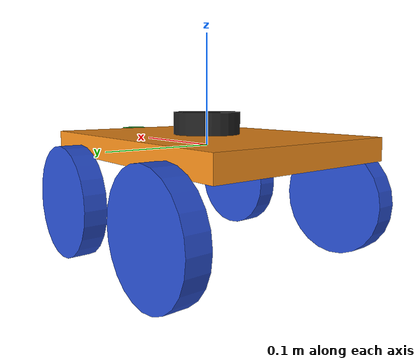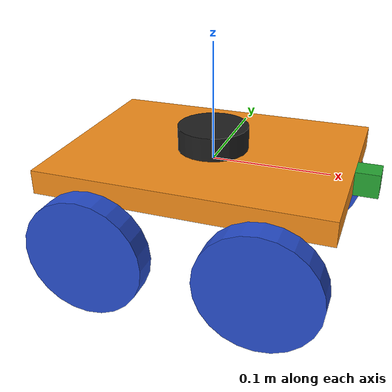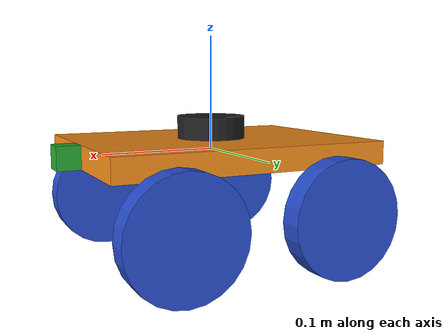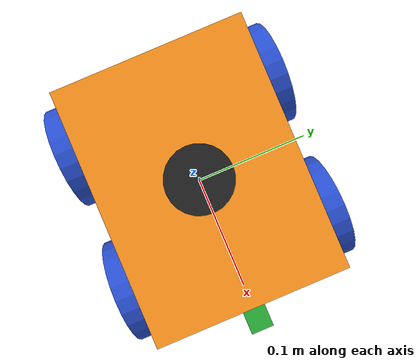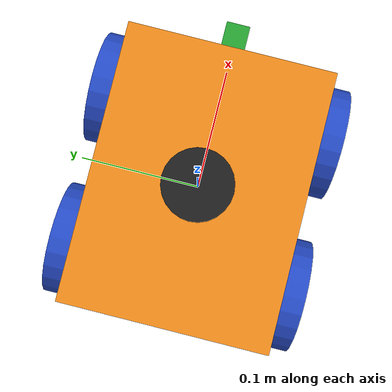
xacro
<?xml version='1.0'?>

<robot name="m_robot" xmlns:xacro="http://www.ros.org/wiki/xacro">

  <xacro:include filename="$(find m_robot_description)/urdf/m_robot.gazebo" />
  <!-- asdasdasd-->
  <link name='base_frame'>
    <pose>0 0 0.1 0 0 0</pose>
    <inertial>
      <mass value="5.0"/>
      <origin xyz="0.0 0 0.0" rpy=" 0 0 0"/>
      <inertia
          ixx="0.0135" ixy="0" ixz="0"
          iyy="0.024" iyz="0"
          izz="0.0375"
      />
    </inertial>

    <collision name='base_frame_collision'>
      <origin xyz="0 0 0" rpy=" 0 0 0"/>
      <geometry>
        <box size=".24 .18 .02"/>
      </geometry>
    </collision>
    <visual name='base_frame_visual'>
      <origin xyz="0 0 0" rpy=" 0 0 0"/>
      <geometry>
        <box size=".24 .18 .02"/>
      </geometry>
    </visual>
  </link>

  <link name="left_wheel_front">
    <!--origin xyz="0.1 0.13 0.1" rpy="0 1.5707 1.5707"/-->
    <collision name="left_wheel_front_collision">
      <origin xyz="0 0 0" rpy="0 1.5707 1.5707"/>
      <geometry>
        <cylinder radius="0.05" length="0.02"/>
      </geometry>
    </collision>
    <visual name="left_wheel_front_visual">
      <origin xyz="0 0 0" rpy="0 1.5707 1.5707"/>
      <geometry>
        <cylinder radius="0.05" length="0.02"/>
      </geometry>
    </visual>
    <inertial>
      <origin xyz="0 0 0" rpy="0 1.5707 1.5707"/>
      <mass value="2.5"/>
      <cylinder_inertia m="2.5" r="0.05" h="0.02"/>
      <inertia
        ixx="0.001646" ixy="0.0" ixz="0.0"
        iyy="0.001646" iyz="0.0"
        izz="0.003125"/>
    </inertial>
  </link>

  <link name="right_wheel_front">
    <!--origin xyz="0.1 -0.13 0.1" rpy="0 1.5707 1.5707"/-->
    <collision name="right_wheel_front_collision">
      <origin xyz="0 0 0" rpy="0 1.5707 1.5707"/>
      <geometry>
        <cylinder radius="0.05" length="0.02"/>
      </geometry>
    </collision>
    <visual name="right_wheel_front_visual">
      <origin xyz="0 0 0" rpy="0 1.5707 1.5707"/>
      <geometry>
        <cylinder radius="0.05" length="0.02"/>
      </geometry>
    </visual>
    <inertial>
      <origin xyz="0 0 0" rpy="0 1.5707 1.5707"/>
      <mass value="2.5"/>
      <cylinder_inertia m="2.5" r="0.05" h="0.02"/>
      <inertia
        ixx="0.001646" ixy="0.0" ixz="0.0"
        iyy="0.001646" iyz="0.0"
        izz="0.003125"/>
    </inertial>
  </link>

  <link name="left_wheel_back">
    <!--origin xyz="0.1 0.13 0.1" rpy="0 1.5707 1.5707"/-->
    <collision name="left_wheel_back_collision">
      <origin xyz="0 0 0" rpy="0 1.5707 1.5707"/>
      <geometry>
        <cylinder radius="0.05" length="0.02"/>
      </geometry>
    </collision>
    <visual name="left_wheel_back_visual">
      <origin xyz="0 0 0" rpy="0 1.5707 1.5707"/>
      <geometry>
        <cylinder radius="0.05" length="0.02"/>
      </geometry>
    </visual>
    <inertial>
      <origin xyz="0 0 0" rpy="0 1.5707 1.5707"/>
      <mass value="2.5"/>
      <cylinder_inertia m="2.5" r="0.05" h="0.02"/>
      <inertia
        ixx="0.001646" ixy="0.0" ixz="0.0"
        iyy="0.001646" iyz="0.0"
        izz="0.003125"/>
    </inertial>
  </link>

  <link name="right_wheel_back">
    <!--origin xyz="0.1 -0.13 0.1" rpy="0 1.5707 1.5707"/-->
    <collision name="right_wheel_back_collision">
      <origin xyz="0 0 0" rpy="0 1.5707 1.5707"/>
      <geometry>
        <cylinder radius="0.05" length="0.02"/>
      </geometry>
    </collision>
    <visual name="right_wheel_back_visual">
      <origin xyz="0 0 0" rpy="0 1.5707 1.5707"/>
      <geometry>
        <cylinder radius="0.05" length="0.02"/>
      </geometry>
    </visual>
    <inertial>
      <origin xyz="0 0 0" rpy="0 1.5707 1.5707"/>
      <mass value="2.5"/>
      <cylinder_inertia m="2.5" r="0.05" h="0.02"/>
      <inertia
        ixx="0.001646" ixy="0.0" ixz="0.0"
        iyy="0.001646" iyz="0.0"
        izz="0.003125"/>
    </inertial>
  </link>

  <joint type="continuous" name="left_wheel_front_hinge">
    <origin xyz="0.07 0.1 -0.05" rpy="0 0 0"/>
    <child link="left_wheel_front"/>
    <parent link="base_frame"/>
    <axis xyz="0 1 0" rpy="0 0 0"/>
    <limit effort="100" velocity="100"/>
    <joint_properties damping="0.0" friction="0.0"/>
  </joint>

  <joint type="continuous" name="right_wheel_front_hinge">
    <origin xyz="0.07 -0.1 -0.05" rpy="0 0 0"/>
    <child link="right_wheel_front"/>
    <parent link="base_frame"/>
    <axis xyz="0 1 0" rpy="0 0 0"/>
    <limit effort="100" velocity="100"/>
    <joint_properties damping="0.0" friction="0.0"/>
  </joint>

  <joint type="continuous" name="left_wheel_back_hinge">
    <origin xyz="-0.07 0.1 -0.05" rpy="0 0 0"/>
    <child link="left_wheel_back"/>
    <parent link="base_frame"/>
    <axis xyz="0 1 0" rpy="0 0 0"/>
    <limit effort="100" velocity="100"/>
    <joint_properties damping="0.0" friction="0.0"/>
  </joint>

  <joint type="continuous" name="right_wheel_back_hinge">
    <origin xyz="-0.07 -0.1 -0.05" rpy="0 0 0"/>
    <child link="right_wheel_back"/>
    <parent link="base_frame"/>
    <axis xyz="0 1 0" rpy="0 0 0"/>
    <limit effort="100" velocity="100"/>
    <joint_properties damping="0.0" friction="0.0"/>
  </joint>

  <link name="camera">
    <collision>
      <origin xyz="0 0 0" rpy="0 0 0"/>
      <geometry>
        <box size="0.02 0.02 0.02"/>
      </geometry>
    </collision>

    <visual>
      <origin xyz="0 0 0" rpy="0 0 0"/>
      <geometry>
        <box size="0.02 0.02 0.02"/>
      </geometry>
    </visual>

    <inertial>
      <mass value="0.0" />
      <origin xyz="0 0 0" rpy="0 0 0"/>
      <inertia ixx="0" ixy="0" ixz="0" iyy="0" iyz="0" izz="0" />
    </inertial>
  </link>

  <joint name="camera_joint" type="fixed">
    <axis xyz="0 1 0" />
    <origin xyz=".13 0 0" rpy="0 0 0"/>
    <parent link="base_frame"/>
    <child link="camera"/>
  </joint>

  <joint name="lidar_joint" type="fixed">
    <axis xyz="0 0 1" />
    <origin xyz="0 0 0.02" rpy="0 0 0"/>
    <parent link="base_frame"/>
    <child link="laser_frame"/>
  </joint>

  <link name="laser_frame">
    <collision>
      <origin xyz="0 0 0" rpy="0 0 0"/>
      <geometry>
        <cylinder radius=".03" length=".02"/>
      </geometry>
    </collision>

    <visual>
      <origin xyz="0 0 0" rpy="0 0 0"/>
      <geometry>
        <cylinder radius=".03" length=".02"/>
      </geometry>
    </visual>

    <inertial>
      <mass value="0.0" />
      <origin xyz="0 0 0" rpy="0 0 0"/>
      <inertia ixx="0.0" ixy="0" ixz="0" iyy="0.0" iyz="0" izz="0.0" />
    </inertial>
  </link>

</robot>
